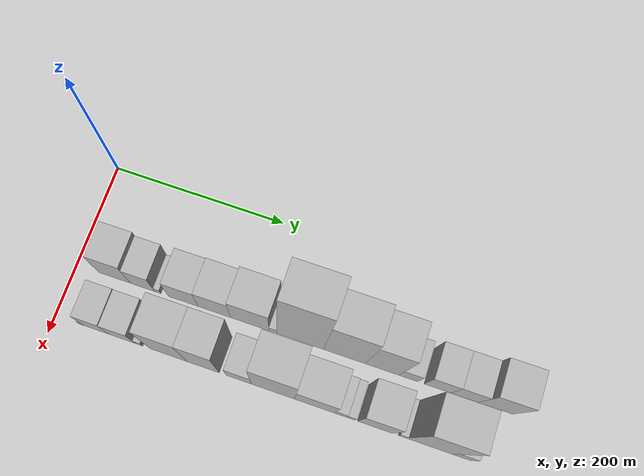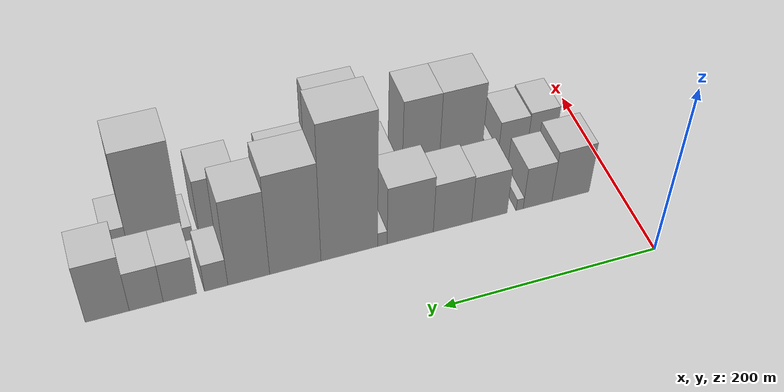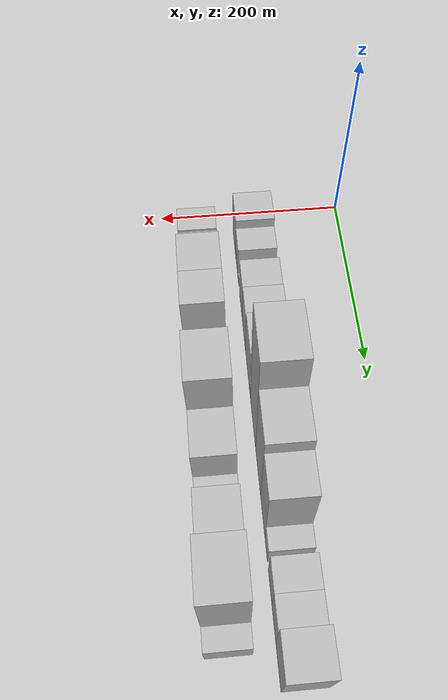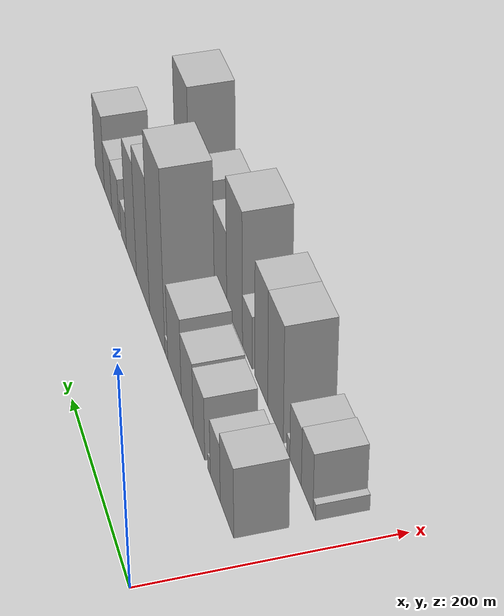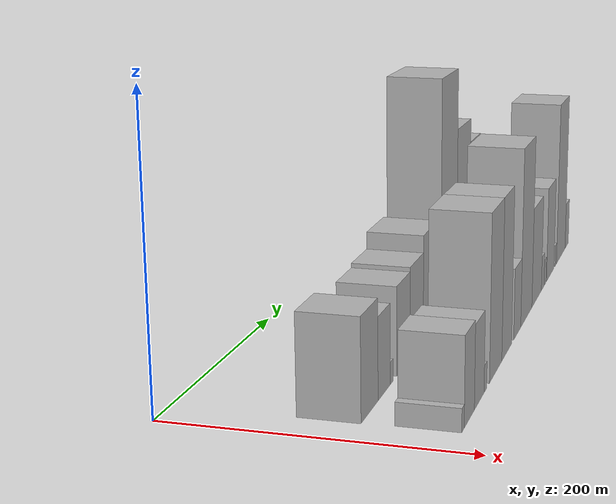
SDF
<sdf version="1.6">
 <world name="default">
  <model name="building_16">
   <static>1</static>
   <pose>100.0000 45.5237 0 0.000000 0.000000 0.000000</pose>
   <link name="link">
    <pose>0 0 33.00 0 0 0</pose>
    <collision name="collision"><geometry><box><size>40.0000 37.3653 66.0000</size></box></geometry></collision>
    <visual name="visual">
     <cast_shadows>0</cast_shadows>
     <geometry><box><size>40.0000 37.3653 66.0000</size></box></geometry>
     <material>
      <script>
       <uri>model://HANNAS_wall/materials/scripts</uri>
       <uri>model://HANNAS_wall/materials/textures</uri>
       <name>vrc/HANNAS_wall</name>
      </script>
     </material>
    </visual>
   </link>
  </model>
  <model name="building_17">
   <static>1</static>
   <pose>100.0000 78.5147 0 0.000000 0.000000 0.000000</pose>
   <link name="link">
    <pose>0 0 27.00 0 0 0</pose>
    <collision name="collision"><geometry><box><size>40.0000 28.6168 54.0000</size></box></geometry></collision>
    <visual name="visual">
     <cast_shadows>0</cast_shadows>
     <geometry><box><size>40.0000 28.6168 54.0000</size></box></geometry>
     <material>
      <script>
       <uri>model://HANNAS_wall/materials/scripts</uri>
       <uri>model://HANNAS_wall/materials/textures</uri>
       <name>vrc/HANNAS_wall</name>
      </script>
     </material>
    </visual>
   </link>
  </model>
  <model name="building_18">
   <static>1</static>
   <pose>100.0000 96.2851 0 0.000000 0.000000 0.000000</pose>
   <link name="link">
    <pose>0 0 7.50 0 0 0</pose>
    <collision name="collision"><geometry><box><size>40.0000 6.9240 15.0000</size></box></geometry></collision>
    <visual name="visual">
     <cast_shadows>0</cast_shadows>
     <geometry><box><size>40.0000 6.9240 15.0000</size></box></geometry>
     <material>
      <script>
       <uri>model://HANNAS_wall/materials/scripts</uri>
       <uri>model://HANNAS_wall/materials/textures</uri>
       <name>vrc/HANNAS_wall</name>
      </script>
     </material>
    </visual>
   </link>
  </model>
  <model name="building_19">
   <static>1</static>
   <pose>100.0000 126.0589 0 0.000000 0.000000 0.000000</pose>
   <link name="link">
    <pose>0 0 30.00 0 0 0</pose>
    <collision name="collision"><geometry><box><size>40.0000 34.6235 60.0000</size></box></geometry></collision>
    <visual name="visual">
     <cast_shadows>0</cast_shadows>
     <geometry><box><size>40.0000 34.6235 60.0000</size></box></geometry>
     <material>
      <script>
       <uri>model://HANNAS_wall/materials/scripts</uri>
       <uri>model://HANNAS_wall/materials/textures</uri>
       <name>vrc/HANNAS_wall</name>
      </script>
     </material>
    </visual>
   </link>
  </model>
  <model name="building_20">
   <static>1</static>
   <pose>100.0000 161.9374 0 0.000000 0.000000 0.000000</pose>
   <link name="link">
    <pose>0 0 31.50 0 0 0</pose>
    <collision name="collision"><geometry><box><size>40.0000 37.1336 63.0000</size></box></geometry></collision>
    <visual name="visual">
     <cast_shadows>0</cast_shadows>
     <geometry><box><size>40.0000 37.1336 63.0000</size></box></geometry>
     <material>
      <script>
       <uri>model://HANNAS_wall/materials/scripts</uri>
       <uri>model://HANNAS_wall/materials/textures</uri>
       <name>vrc/HANNAS_wall</name>
      </script>
     </material>
    </visual>
   </link>
  </model>
  <model name="building_21">
   <static>1</static>
   <pose>100.0000 202.5004 0 0.000000 0.000000 0.000000</pose>
   <link name="link">
    <pose>0 0 37.50 0 0 0</pose>
    <collision name="collision"><geometry><box><size>40.0000 43.9925 75.0000</size></box></geometry></collision>
    <visual name="visual">
     <cast_shadows>0</cast_shadows>
     <geometry><box><size>40.0000 43.9925 75.0000</size></box></geometry>
     <material>
      <script>
       <uri>model://HANNAS_wall/materials/scripts</uri>
       <uri>model://HANNAS_wall/materials/textures</uri>
       <name>vrc/HANNAS_wall</name>
      </script>
     </material>
    </visual>
   </link>
  </model>
  <model name="building_22">
   <static>1</static>
   <pose>100.0000 228.9801 0 0.000000 0.000000 0.000000</pose>
   <link name="link">
    <pose>0 0 9.00 0 0 0</pose>
    <collision name="collision"><geometry><box><size>40.0000 8.9669 18.0000</size></box></geometry></collision>
    <visual name="visual">
     <cast_shadows>0</cast_shadows>
     <geometry><box><size>40.0000 8.9669 18.0000</size></box></geometry>
     <material>
      <script>
       <uri>model://HANNAS_wall/materials/scripts</uri>
       <uri>model://HANNAS_wall/materials/textures</uri>
       <name>vrc/HANNAS_wall</name>
      </script>
     </material>
    </visual>
   </link>
  </model>
  <model name="building_23">
   <static>1</static>
   <pose>100.0000 259.8281 0 0.000000 0.000000 0.000000</pose>
   <link name="link">
    <pose>0 0 87.00 0 0 0</pose>
    <collision name="collision"><geometry><box><size>40.0000 52.7291 174.0000</size></box></geometry></collision>
    <visual name="visual">
     <cast_shadows>0</cast_shadows>
     <geometry><box><size>40.0000 52.7291 174.0000</size></box></geometry>
     <material>
      <script>
       <uri>model://HANNAS_wall/materials/scripts</uri>
       <uri>model://HANNAS_wall/materials/textures</uri>
       <name>vrc/HANNAS_wall</name>
      </script>
     </material>
    </visual>
   </link>
  </model>
  <model name="building_24">
   <static>1</static>
   <pose>100.0000 309.6438 0 0.000000 0.000000 0.000000</pose>
   <link name="link">
    <pose>0 0 64.50 0 0 0</pose>
    <collision name="collision"><geometry><box><size>40.0000 46.9024 129.0000</size></box></geometry></collision>
    <visual name="visual">
     <cast_shadows>0</cast_shadows>
     <geometry><box><size>40.0000 46.9024 129.0000</size></box></geometry>
     <material>
      <script>
       <uri>model://HANNAS_wall/materials/scripts</uri>
       <uri>model://HANNAS_wall/materials/textures</uri>
       <name>vrc/HANNAS_wall</name>
      </script>
     </material>
    </visual>
   </link>
  </model>
  <model name="building_25">
   <static>1</static>
   <pose>100.0000 351.9234 0 0.000000 0.000000 0.000000</pose>
   <link name="link">
    <pose>0 0 55.50 0 0 0</pose>
    <collision name="collision"><geometry><box><size>40.0000 37.6569 111.0000</size></box></geometry></collision>
    <visual name="visual">
     <cast_shadows>0</cast_shadows>
     <geometry><box><size>40.0000 37.6569 111.0000</size></box></geometry>
     <material>
      <script>
       <uri>model://HANNAS_wall/materials/scripts</uri>
       <uri>model://HANNAS_wall/materials/textures</uri>
       <name>vrc/HANNAS_wall</name>
      </script>
     </material>
    </visual>
   </link>
  </model>
  <model name="building_26">
   <static>1</static>
   <pose>100.0000 381.1770 0 0.000000 0.000000 0.000000</pose>
   <link name="link">
    <pose>0 0 18.00 0 0 0</pose>
    <collision name="collision"><geometry><box><size>40.0000 20.8504 36.0000</size></box></geometry></collision>
    <visual name="visual">
     <cast_shadows>0</cast_shadows>
     <geometry><box><size>40.0000 20.8504 36.0000</size></box></geometry>
     <material>
      <script>
       <uri>model://HANNAS_wall/materials/scripts</uri>
       <uri>model://HANNAS_wall/materials/textures</uri>
       <name>vrc/HANNAS_wall</name>
      </script>
     </material>
    </visual>
   </link>
  </model>
  <model name="building_27">
   <static>1</static>
   <pose>100.0000 413.2672 0 0.000000 0.000000 0.000000</pose>
   <link name="link">
    <pose>0 0 25.50 0 0 0</pose>
    <collision name="collision"><geometry><box><size>40.0000 29.3300 51.0000</size></box></geometry></collision>
    <visual name="visual">
     <cast_shadows>0</cast_shadows>
     <geometry><box><size>40.0000 29.3300 51.0000</size></box></geometry>
     <material>
      <script>
       <uri>model://HANNAS_wall/materials/scripts</uri>
       <uri>model://HANNAS_wall/materials/textures</uri>
       <name>vrc/HANNAS_wall</name>
      </script>
     </material>
    </visual>
   </link>
  </model>
  <model name="building_28">
   <static>1</static>
   <pose>100.0000 442.6808 0 0.000000 0.000000 0.000000</pose>
   <link name="link">
    <pose>0 0 25.50 0 0 0</pose>
    <collision name="collision"><geometry><box><size>40.0000 29.4973 51.0000</size></box></geometry></collision>
    <visual name="visual">
     <cast_shadows>0</cast_shadows>
     <geometry><box><size>40.0000 29.4973 51.0000</size></box></geometry>
     <material>
      <script>
       <uri>model://HANNAS_wall/materials/scripts</uri>
       <uri>model://HANNAS_wall/materials/textures</uri>
       <name>vrc/HANNAS_wall</name>
      </script>
     </material>
    </visual>
   </link>
  </model>
  <model name="building_29">
   <static>1</static>
   <pose>100.0000 476.3734 0 0.000000 0.000000 0.000000</pose>
   <link name="link">
    <pose>0 0 37.50 0 0 0</pose>
    <collision name="collision"><geometry><box><size>40.0000 37.8878 75.0000</size></box></geometry></collision>
    <visual name="visual">
     <cast_shadows>0</cast_shadows>
     <geometry><box><size>40.0000 37.8878 75.0000</size></box></geometry>
     <material>
      <script>
       <uri>model://HANNAS_wall/materials/scripts</uri>
       <uri>model://HANNAS_wall/materials/textures</uri>
       <name>vrc/HANNAS_wall</name>
      </script>
     </material>
    </visual>
   </link>
  </model>
  <model name="building_41">
   <static>1</static>
   <pose>160.0000 31.8814 0 0.000000 0.000000 0.000000</pose>
   <link name="link">
    <pose>0 0 7.50 0 0 0</pose>
    <collision name="collision"><geometry><box><size>40.0000 6.7196 15.0000</size></box></geometry></collision>
    <visual name="visual">
     <cast_shadows>0</cast_shadows>
     <geometry><box><size>40.0000 6.7196 15.0000</size></box></geometry>
     <material>
      <script>
       <uri>model://HANNAS_wall/materials/scripts</uri>
       <uri>model://HANNAS_wall/materials/textures</uri>
       <name>vrc/HANNAS_wall</name>
      </script>
     </material>
    </visual>
   </link>
  </model>
  <model name="building_42">
   <static>1</static>
   <pose>160.0000 49.8127 0 0.000000 0.000000 0.000000</pose>
   <link name="link">
    <pose>0 0 28.50 0 0 0</pose>
    <collision name="collision"><geometry><box><size>40.0000 29.1430 57.0000</size></box></geometry></collision>
    <visual name="visual">
     <cast_shadows>0</cast_shadows>
     <geometry><box><size>40.0000 29.1430 57.0000</size></box></geometry>
     <material>
      <script>
       <uri>model://HANNAS_wall/materials/scripts</uri>
       <uri>model://HANNAS_wall/materials/textures</uri>
       <name>vrc/HANNAS_wall</name>
      </script>
     </material>
    </visual>
   </link>
  </model>
  <model name="building_43">
   <static>1</static>
   <pose>160.0000 79.1758 0 0.000000 0.000000 0.000000</pose>
   <link name="link">
    <pose>0 0 27.00 0 0 0</pose>
    <collision name="collision"><geometry><box><size>40.0000 29.5832 54.0000</size></box></geometry></collision>
    <visual name="visual">
     <cast_shadows>0</cast_shadows>
     <geometry><box><size>40.0000 29.5832 54.0000</size></box></geometry>
     <material>
      <script>
       <uri>model://HANNAS_wall/materials/scripts</uri>
       <uri>model://HANNAS_wall/materials/textures</uri>
       <name>vrc/HANNAS_wall</name>
      </script>
     </material>
    </visual>
   </link>
  </model>
  <model name="building_44">
   <static>1</static>
   <pose>160.0000 98.0812 0 0.000000 0.000000 0.000000</pose>
   <link name="link">
    <pose>0 0 9.00 0 0 0</pose>
    <collision name="collision"><geometry><box><size>40.0000 8.2276 18.0000</size></box></geometry></collision>
    <visual name="visual">
     <cast_shadows>0</cast_shadows>
     <geometry><box><size>40.0000 8.2276 18.0000</size></box></geometry>
     <material>
      <script>
       <uri>model://HANNAS_wall/materials/scripts</uri>
       <uri>model://HANNAS_wall/materials/textures</uri>
       <name>vrc/HANNAS_wall</name>
      </script>
     </material>
    </visual>
   </link>
  </model>
  <model name="building_45">
   <static>1</static>
   <pose>160.0000 132.3392 0 0.000000 0.000000 0.000000</pose>
   <link name="link">
    <pose>0 0 55.50 0 0 0</pose>
    <collision name="collision"><geometry><box><size>40.0000 42.2884 111.0000</size></box></geometry></collision>
    <visual name="visual">
     <cast_shadows>0</cast_shadows>
     <geometry><box><size>40.0000 42.2884 111.0000</size></box></geometry>
     <material>
      <script>
       <uri>model://HANNAS_wall/materials/scripts</uri>
       <uri>model://HANNAS_wall/materials/textures</uri>
       <name>vrc/HANNAS_wall</name>
      </script>
     </material>
    </visual>
   </link>
  </model>
  <model name="building_46">
   <static>1</static>
   <pose>160.0000 171.5870 0 0.000000 0.000000 0.000000</pose>
   <link name="link">
    <pose>0 0 55.50 0 0 0</pose>
    <collision name="collision"><geometry><box><size>40.0000 36.2071 111.0000</size></box></geometry></collision>
    <visual name="visual">
     <cast_shadows>0</cast_shadows>
     <geometry><box><size>40.0000 36.2071 111.0000</size></box></geometry>
     <material>
      <script>
       <uri>model://HANNAS_wall/materials/scripts</uri>
       <uri>model://HANNAS_wall/materials/textures</uri>
       <name>vrc/HANNAS_wall</name>
      </script>
     </material>
    </visual>
   </link>
  </model>
  <model name="building_47">
   <static>1</static>
   <pose>160.0000 211.8561 0 0.000000 0.000000 0.000000</pose>
   <link name="link">
    <pose>0 0 25.50 0 0 0</pose>
    <collision name="collision"><geometry><box><size>40.0000 28.3312 51.0000</size></box></geometry></collision>
    <visual name="visual">
     <cast_shadows>0</cast_shadows>
     <geometry><box><size>40.0000 28.3312 51.0000</size></box></geometry>
     <material>
      <script>
       <uri>model://HANNAS_wall/materials/scripts</uri>
       <uri>model://HANNAS_wall/materials/textures</uri>
       <name>vrc/HANNAS_wall</name>
      </script>
     </material>
    </visual>
   </link>
  </model>
  <model name="building_48">
   <static>1</static>
   <pose>160.0000 250.0031 0 0.000000 0.000000 0.000000</pose>
   <link name="link">
    <pose>0 0 64.50 0 0 0</pose>
    <collision name="collision"><geometry><box><size>40.0000 47.9628 129.0000</size></box></geometry></collision>
    <visual name="visual">
     <cast_shadows>0</cast_shadows>
     <geometry><box><size>40.0000 47.9628 129.0000</size></box></geometry>
     <material>
      <script>
       <uri>model://HANNAS_wall/materials/scripts</uri>
       <uri>model://HANNAS_wall/materials/textures</uri>
       <name>vrc/HANNAS_wall</name>
      </script>
     </material>
    </visual>
   </link>
  </model>
  <model name="building_49">
   <static>1</static>
   <pose>160.0000 296.0678 0 0.000000 0.000000 0.000000</pose>
   <link name="link">
    <pose>0 0 37.50 0 0 0</pose>
    <collision name="collision"><geometry><box><size>40.0000 44.1665 75.0000</size></box></geometry></collision>
    <visual name="visual">
     <cast_shadows>0</cast_shadows>
     <geometry><box><size>40.0000 44.1665 75.0000</size></box></geometry>
     <material>
      <script>
       <uri>model://HANNAS_wall/materials/scripts</uri>
       <uri>model://HANNAS_wall/materials/textures</uri>
       <name>vrc/HANNAS_wall</name>
      </script>
     </material>
    </visual>
   </link>
  </model>
  <model name="building_50">
   <static>1</static>
   <pose>160.0000 324.6607 0 0.000000 0.000000 0.000000</pose>
   <link name="link">
    <pose>0 0 13.50 0 0 0</pose>
    <collision name="collision"><geometry><box><size>40.0000 13.0194 27.0000</size></box></geometry></collision>
    <visual name="visual">
     <cast_shadows>0</cast_shadows>
     <geometry><box><size>40.0000 13.0194 27.0000</size></box></geometry>
     <material>
      <script>
       <uri>model://HANNAS_wall/materials/scripts</uri>
       <uri>model://HANNAS_wall/materials/textures</uri>
       <name>vrc/HANNAS_wall</name>
      </script>
     </material>
    </visual>
   </link>
  </model>
  <model name="building_51">
   <static>1</static>
   <pose>160.0000 335.8543 0 0.000000 0.000000 0.000000</pose>
   <link name="link">
    <pose>0 0 10.50 0 0 0</pose>
    <collision name="collision"><geometry><box><size>40.0000 9.3678 21.0000</size></box></geometry></collision>
    <visual name="visual">
     <cast_shadows>0</cast_shadows>
     <geometry><box><size>40.0000 9.3678 21.0000</size></box></geometry>
     <material>
      <script>
       <uri>model://HANNAS_wall/materials/scripts</uri>
       <uri>model://HANNAS_wall/materials/textures</uri>
       <name>vrc/HANNAS_wall</name>
      </script>
     </material>
    </visual>
   </link>
  </model>
  <model name="building_52">
   <static>1</static>
   <pose>160.0000 362.7336 0 0.000000 0.000000 0.000000</pose>
   <link name="link">
    <pose>0 0 37.50 0 0 0</pose>
    <collision name="collision"><geometry><box><size>40.0000 38.3908 75.0000</size></box></geometry></collision>
    <visual name="visual">
     <cast_shadows>0</cast_shadows>
     <geometry><box><size>40.0000 38.3908 75.0000</size></box></geometry>
     <material>
      <script>
       <uri>model://HANNAS_wall/materials/scripts</uri>
       <uri>model://HANNAS_wall/materials/textures</uri>
       <name>vrc/HANNAS_wall</name>
      </script>
     </material>
    </visual>
   </link>
  </model>
  <model name="building_53">
   <static>1</static>
   <pose>160.0000 392.1597 0 0.000000 0.000000 0.000000</pose>
   <link name="link">
    <pose>0 0 9.00 0 0 0</pose>
    <collision name="collision"><geometry><box><size>40.0000 8.4614 18.0000</size></box></geometry></collision>
    <visual name="visual">
     <cast_shadows>0</cast_shadows>
     <geometry><box><size>40.0000 8.4614 18.0000</size></box></geometry>
     <material>
      <script>
       <uri>model://HANNAS_wall/materials/scripts</uri>
       <uri>model://HANNAS_wall/materials/textures</uri>
       <name>vrc/HANNAS_wall</name>
      </script>
     </material>
    </visual>
   </link>
  </model>
  <model name="building_54">
   <static>1</static>
   <pose>160.0000 420.9812 0 0.000000 0.000000 0.000000</pose>
   <link name="link">
    <pose>0 0 66.00 0 0 0</pose>
    <collision name="collision"><geometry><box><size>40.0000 49.1816 132.0000</size></box></geometry></collision>
    <visual name="visual">
     <cast_shadows>0</cast_shadows>
     <geometry><box><size>40.0000 49.1816 132.0000</size></box></geometry>
     <material>
      <script>
       <uri>model://HANNAS_wall/materials/scripts</uri>
       <uri>model://HANNAS_wall/materials/textures</uri>
       <name>vrc/HANNAS_wall</name>
      </script>
     </material>
    </visual>
   </link>
  </model>
  <model name="building_55">
   <static>1</static>
   <pose>160.0000 455.4969 0 0.000000 0.000000 0.000000</pose>
   <link name="link">
    <pose>0 0 19.50 0 0 0</pose>
    <collision name="collision"><geometry><box><size>40.0000 19.8496 39.0000</size></box></geometry></collision>
    <visual name="visual">
     <cast_shadows>0</cast_shadows>
     <geometry><box><size>40.0000 19.8496 39.0000</size></box></geometry>
     <material>
      <script>
       <uri>model://HANNAS_wall/materials/scripts</uri>
       <uri>model://HANNAS_wall/materials/textures</uri>
       <name>vrc/HANNAS_wall</name>
      </script>
     </material>
    </visual>
   </link>
  </model>
 </world>
</sdf>
